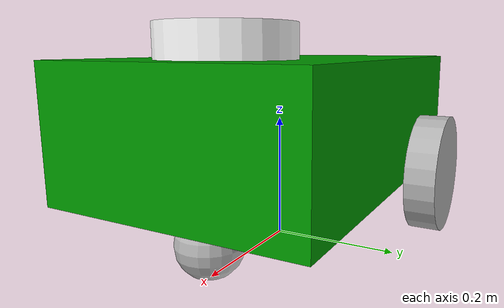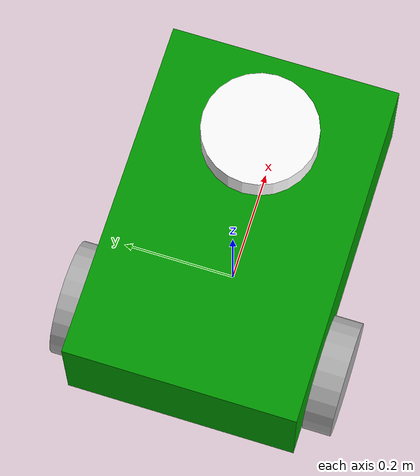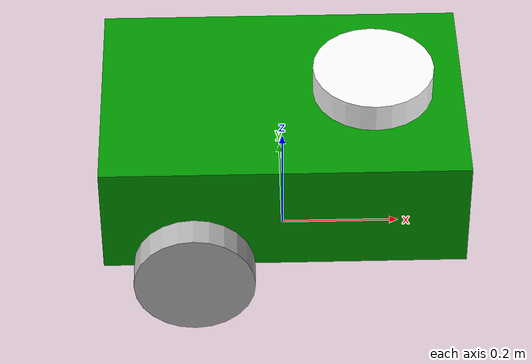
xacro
<?xml version="1.0"?>
<robot name="my_robot" xmlns:xacro="http://www.ros.org/wiki/xacro">

    <xacro:property name="base_length" value="0.6" />
    <xacro:property name="base_width" value="0.4" />
    <xacro:property name="base_height" value="0.2" />
    <xacro:property name="wheel_radius" value="0.1" />
    <xacro:property name="wheel_length" value="0.05" />

    <xacro:macro name="box_inertia" params="mass lx ly lz xyz rpy">
        <inertial>
            <origin xyz="${xyz}" rpy="${rpy}" />
            <mass value="${mass}" />
            <inertia ixx="${(mass / 12.0) * (ly * ly + lz * lz)}" ixy="0" ixz="0"
                iyy="${(mass / 12.0) * (lx * lx + lz * lz)}" iyz="0"
                izz="${(mass / 12.0) * (lx * lx + ly * ly)}" />
            </inertial>
    </xacro:macro>
    <xacro:macro name="sphere_inertia" params="mass radius xyz rpy">
        <inertial>
            <origin xyz="${xyz}" rpy="${rpy}" />
            <mass value="${mass}" />
            <inertia ixx="${(2 / 5) * mass * radius * radius}" ixy="0" ixz="0"
                     iyy="${(2 / 5) * mass * radius * radius}" iyz="0"
                     izz="${(2 / 5) * mass * radius * radius}" />
            </inertial>
    </xacro:macro>
    <xacro:macro name="cylinder_inertia" params="mass radius height xyz rpy">
        <inertial>
            <origin xyz="${xyz}" rpy="${rpy}" />
            <mass value="${mass}" />
            <inertia ixx="${(1 / 12) * mass * (3 * radius * radius + height * height)}" ixy="0" ixz="0"
                     iyy="${(1 / 12) * mass * (3 * radius * radius + height * height)}" iyz="0"
                     izz="${(1 / 2) * mass * radius * radius}" />
            </inertial>
    </xacro:macro>

    <material name="green">
        <color rgba="0 0.6 0 1"/>
    </material>

    <material name="white">
        <color rgba="1 1 1 1"/>
    </material>

    <material name="gray">
        <color rgba="0.7 0.7 0.7 1"/>
    </material>

    <link name="base_footprint"/>

    <link name="base_link">
        <visual>
            <geometry>
                <box size="${base_length} ${base_width} ${base_height}" />
            </geometry>
            <origin xyz="0 0 ${base_height/2.0}" rpy="0 0 0" />
            <material name="green"/>
        </visual>
        <collision>
            <geometry>
                <box size="${base_length} ${base_width} ${base_height}" />
            </geometry>
            <origin xyz="0 0 ${base_height / 2.0}" rpy="0 0 0" />
        </collision>

        <xacro:box_inertia mass="5.0" lx="${base_length}" ly="${base_width}"
            lz="${base_height}" xyz="0 0 ${base_height / 2.0}" rpy="0 0 0" />
    </link>

    <link name="lidar">
        <visual>
            <geometry>
                <cylinder radius="0.1" length="0.05" />
            </geometry>
            <origin xyz="0 0 0" rpy="0 0 0" />
            <material name="white"/>
        </visual>
        <collision>
            <geometry>
                <cylinder radius="0.1" length="0.05" />
            </geometry>
            <origin xyz="0 0 0" rpy="0 0 0" />
        </collision>
        <xacro:cylinder_inertia mass="1.0" height="0.05"
            radius="0.1" xyz="0 0 0" rpy="0 0 0"/>
    </link>

    <link name="left_wheel">
        <visual>
            <geometry>
                <cylinder radius="${wheel_radius}" length="${wheel_length}" />
            </geometry>
            <origin xyz="0 0 ${wheel_length/2}" rpy="0 0 0" />
            <material name="gray"/>
        </visual>
        <collision>
            <geometry>
                <cylinder radius="${wheel_radius}" length="${wheel_length}" />
            </geometry>
            <origin xyz="0 0 ${wheel_length/2}" rpy="0 0 0" />
        </collision>
        <xacro:cylinder_inertia mass="1.0" radius="${wheel_radius}" height="${wheel_length}"
            xyz="0 0 ${wheel_length/2}" rpy="0 0 0" />
    </link>

    <link name="right_wheel">
        <visual>
            <geometry>
                <cylinder radius="${wheel_radius}" length="${wheel_length}" />
            </geometry>
            <origin xyz="0 0 ${-wheel_length/2}" rpy="0 0 0" />
            <material name="gray"/>
        </visual>
        <collision>
            <geometry>
                <cylinder radius="${wheel_radius}" length="${wheel_length}" />
            </geometry>
            <origin xyz="0 0 ${-wheel_length/2}" rpy="0 0 0" />
        </collision>
        <xacro:cylinder_inertia mass="1.0" radius="${wheel_radius}" height="${wheel_length}"
            xyz="0 0 ${-wheel_length/2}" rpy="0 0 0" />
    </link>

    <link name="caster_wheel">
        <visual>
            <geometry>
                <sphere radius="${wheel_radius/2}" />
            </geometry>
            <origin xyz="0 0 0" rpy="0 0 0" />
            <material name="gray" />
        </visual>
        <collision>
            <geometry>
                <sphere radius="${wheel_radius/2}" />
            </geometry>
            <origin xyz="0 0 0" rpy="0 0 0" />
        </collision>
        <xacro:sphere_inertia mass="2.0" radius="${wheel_radius/2}"
            xyz="0 0 0" rpy="0 0 0" />
    </link>

    <joint name="base_lidar_joint" type="fixed">
        <parent link="base_link"/>
        <child link="lidar"/>
        <origin xyz="${base_length/4} 0 ${base_height+0.025}" rpy="0 0 0"/>
    </joint>

    <joint name="base_left_wheel_joint" type="continuous">
        <parent link="base_link"/>
        <child link="left_wheel"/>
        <origin xyz="${-base_length/4} ${base_width/2} 0" rpy="${-pi / 2.0} 0 0"/>
        <axis xyz="0 0 1"/>
    </joint>

    <joint name="base_right_wheel_joint" type="continuous">
        <parent link="base_link"/>
        <child link="right_wheel"/>
        <origin xyz="${-base_length/4} ${-base_width/2} 0" rpy="${-pi / 2.0} 0 0"/>
        <axis xyz="0 0 1"/>
    </joint>

    <joint name="base_caster_wheel_joint" type="fixed">
        <parent link="base_link"/>
        <child link="caster_wheel"/>
        <origin xyz="${base_length/3} 0 ${-wheel_radius/2}" rpy="0 0 0" />
    </joint>

    <joint name="base_joint" type="fixed">
        <parent link="base_footprint"/>
        <child link="base_link"/>
        <origin xyz="0 0 ${wheel_radius}" rpy="0 0 0" />
    </joint>

    <gazebo reference="base_link">
        <material>Gazebo/Green</material>
    </gazebo>
    <gazebo reference="left_wheel">
        <material>Gazebo/Gray</material>
    </gazebo>
    <gazebo reference="right_wheel">
        <material>Gazebo/Gray</material>
    </gazebo>
    <gazebo reference="caster_wheel">
        <material>Gazebo/Gray</material>
    </gazebo>
    <gazebo reference="lidar">
        <material>Gazebo/White</material>
    </gazebo>

    <gazebo reference="lidar">
        <sensor name="lidar_scan" type="ray">
            <always_on>true</always_on>
            <pose> 0 0 0 0 0 0 </pose>
            <visualize>true</visualize>
            <update_rate>10</update_rate>
            <ray>
                <scan>
                    <horizontal>
                        <samples>360</samples>
                        <resolution>1.000</resolution>
                        <min_angle>-3.14</min_angle>
                        <max_angle>3.14</max_angle>
                    </horizontal>
                </scan>
                <range>
                    <min>0.3</min>
                    <max>15.0</max>
                    <resolution>0.015</resolution>
                </range>
            </ray>
            <plugin name="scan" filename="libgazebo_ros_ray_sensor.so">
                <ros>
                    <remapping>~/out:=scan</remapping>
                </ros>
                <output_type>sensor_msgs/LaserScan</output_type>
                <frame_name>lidar</frame_name>
            </plugin>
        </sensor>
    </gazebo>

    <gazebo>
        <plugin name="diff_drive_controller" filename="libgazebo_ros_diff_drive.so">
            <!-- Update rate in Hz -->
            <update_rate>50</update_rate>

            <!-- wheels -->
            <left_joint>base_left_wheel_joint</left_joint>
            <right_joint>base_right_wheel_joint</right_joint>

            <!-- kinematics -->
            <wheel_separation>0.4</wheel_separation>
            <wheel_diameter>0.2</wheel_diameter>

            <!-- output -->
            <publish_odom>true</publish_odom>
            <publish_odom_tf>true</publish_odom_tf>
            <publish_wheel_tf>true</publish_wheel_tf>
            <odometry_topic>odom</odometry_topic>
            <odometry_frame>odom</odometry_frame>
            <robot_base_frame>base_footprint</robot_base_frame>

            <!-- input -->
            <command_topic>cmd_vel</command_topic>

        </plugin>
    </gazebo>

</robot>
